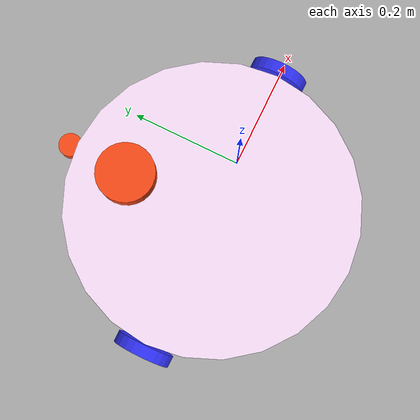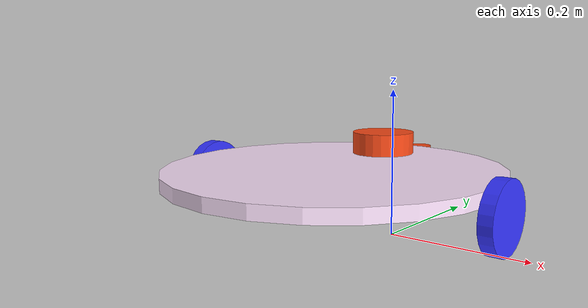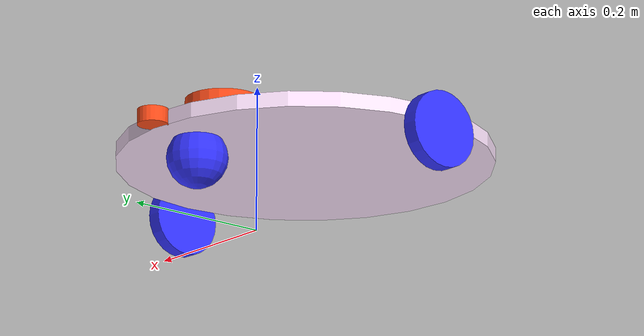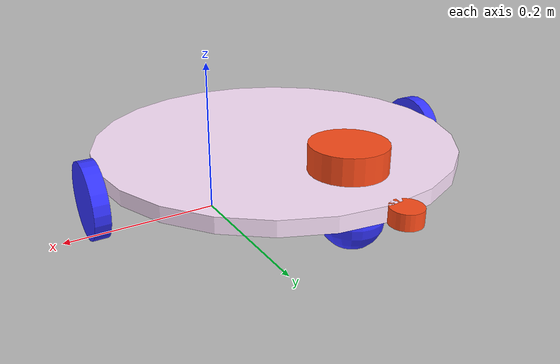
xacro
<?xml version="1.0"?>
<robot xmlns:xacro="http://www.ros.org/wiki/xacro" name="mybot">
    <xacro:include filename="mybot_material.xacro"/>
    <xacro:include filename="mybot_inertial.xacro"/>
    <xacro:include filename="gazebo_control.xacro"/>
    <xacro:include filename="lidar.xacro"/>
    <!-- base link -->

    <link name="base_link">

    </link>/>

    <!-- chasis link -->

    <link name="chassis_link">
        <visual>
            <origin xyz="0.0 0.0 0.075" rpy="0.0 0.0 0.0"/>
            <geometry>
                <cylinder radius="0.25" length="0.02"/>
            </geometry>
            <material name="white"/>
        </visual>
        <collision>
            <origin xyz="0.0 0.0 0.075" rpy="0.0 0.0 0.0"/>
            <geometry>
                <cylinder radius="0.25" length="0.02"/>
            </geometry>
        </collision>
        <xacro:inertial_cylinder mass="0.5" length = "0.05" radius = "5">
            <origin xyz = "0 0 0" rpy = "0 0 0"/>
        </xacro:inertial_cylinder>
    </link>

    <joint name="chassis_joint" type="fixed">
        <parent link="base_link"/>
        <child link="chassis_link"/>
        <origin xyz="-0.1 0.0 0.0" rpy="0.0 0.0 0.0"/>
    </joint>

    <gazebo reference = "chassis_link">
        <material>Gazebo/Black</material>
    </gazebo>

    <!-- left_wheel -->

    <link name="left_wheel">
        <visual>
            <origin xyz="0.0 0.0 0.0" rpy="0.0 1.57 0.0"/>
            <geometry>
                <cylinder radius="0.05" length="0.02"/>
            </geometry>
            <material name="blue"/>
        </visual>
        <collision>
            <origin xyz="0.0 0.0 0.0" rpy="0.0 1.57 0.0"/>
            <geometry>
                <cylinder radius="0.05" length="0.02"/>
            </geometry>
        </collision>
        <xacro:inertial_cylinder mass="0.1" length="0.02" radius="0.05">
            <origin xyz="0 0 0" rpy="0 0 0"/>
        </xacro:inertial_cylinder>
    </link>

    <joint name="leftwheel_joint" type="continuous">
        <parent link="chassis_link"/>
        <child link="left_wheel"/>
        <origin xyz="0.26 0.0 0.05" rpy="-1.573 0.0 0.0"/>
        <axis xyz="-1 0 0"/>
    </joint>

    <gazebo reference = "left_wheel">
        <material>Gazebo/Black</material>
    </gazebo>

    <!-- right_wheel -->
    <link name="right_wheel">
        <visual>
            <origin xyz="0.0 0.0 0.0" rpy="0.0 1.57 0.0"/>
            <geometry>
                <cylinder radius="0.05" length="0.02"/>
            </geometry>
            <material name="blue"/>
        </visual>
        <collision>
            <origin xyz="0.0 0.0 0.0" rpy="0.0 1.57 0.0"/>
            <geometry>
                <cylinder radius="0.05" length="0.02"/>
            </geometry>
        </collision>
        <xacro:inertial_cylinder mass="0.1" length="0.02" radius="0.05">
            <origin xyz="0 0 0" rpy="0 0 0"/>
        </xacro:inertial_cylinder>
    </link>

    <joint name="rightwheel_joint" type="continuous">
        <parent link="chassis_link"/>
        <child link="right_wheel"/>
        <origin xyz="-0.26 0.0 0.05" rpy="1.573 0.0 0.0"/>
        <axis xyz="-1 0 0"/>
    </joint>

    <gazebo reference = "right_wheel">
        <material>Gazebo/Black</material>
    </gazebo>

    <!-- caster wheel -->

    <link name="caster_wheel">
        <visual>
            <origin xyz="0.0 0.18 0.04" rpy="0.0 0.0 0.0"/>
            <geometry>
                <sphere radius="0.04"/>
            </geometry>
            <material name="blue"/>
        </visual>
        <collision>
            <origin xyz="0.0 0.18 0.04" rpy="0.0 0.0 0.0"/>
            <geometry>
                <sphere radius="0.04"/>
            </geometry>
        </collision>
        <xacro:inertial_sphere mass="0.1" radius="0.04">
            <origin xyz="0 0 0" rpy="0 0 0"/>
        </xacro:inertial_sphere>
    </link>

    <joint name="caster_wheel_joint" type="fixed">
        <parent link="chassis_link"/>
        <child link="caster_wheel"/>
        <origin xyz="0.0 0.0 0.0" rpy="0.0 0.0 0.0"/>
    </joint>

    <!-- cater wheel friction -->
    <gazebo reference="caster_wheel">
        <material>Gazebo/Black</material>
        <mu1 value="0.001"/>
        <mu2 value="0.001"/>
    </gazebo>

    <!-- transmission tags -->
    <transmission name ="trans_1">
        <type>transmission_interface/SimpleTransmission</type>
        <joint name="leftwheel_joint">
            <hardwareInterface>hardware_interface/PositionJointInterface</hardwareInterface>
        </joint>
        <actuator name="motor_1">
            <hardwareInterface>hardware_interface/PositionJointInterface</hardwareInterface>
            <mechanicalReduction>1</mechanicalReduction>
        </actuator>
    </transmission>

    <transmission name ="trans_1">
        <type>transmission_interface/SimpleTransmission</type>
        <joint name="rightwheel_joint">
            <hardwareInterface>hardware_interface/PositionJointInterface</hardwareInterface>
        </joint>
        <actuator name="motor_1">
            <hardwareInterface>hardware_interface/PositionJointInterface</hardwareInterface>
            <mechanicalReduction>1</mechanicalReduction>
        </actuator>
    </transmission>

</robot>

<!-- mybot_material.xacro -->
<robot xmlns:xacro="http://www.ros.org/wiki/xacro">
    <material name="white">
        <color rgba="1 0.9 1 1"/>
    </material>
    <material name="orange">
        <color rgba="1 0.3 0.1 1"/>
    </material>

    <material name="blue">
        <color rgba="0.2 0.2 1 1"/>
    </material>

    <material name="black">
        <color rgba="0.0 0.0 0.0 1"/>
    </material>
</robot>

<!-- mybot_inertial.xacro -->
<robot xmlns:xacro="http://www.ros.org/wiki/xacro" >

    <xacro:macro name="inertial_sphere" params="mass radius *origin">
        <inertial>
            <xacro:insert_block name="origin"/>
            <mass value="${mass}" />
            <inertia ixx="${(2/5) * mass * (radius*radius)}" ixy="0.0" ixz="0.0"
                    iyy="${(2/5) * mass * (radius*radius)}" iyz="0.0"
                    izz="${(2/5) * mass * (radius*radius)}" />
        </inertial>
    </xacro:macro>

    <xacro:macro name="inerial_chasis" params="mass radius *origin">
        <inertial>
            <xacro:insert_block name="origin"/>
            <mass value="${mass}"/>
           <inertia ixx="${(2/5) * mass * (radius*radius)}" ixy="0.0" ixz="0.0"
                iyy="${(2/5) * mass * (radius*radius)}" iyz="0.0"
                izz="${(2/5) * mass * (radius*radius)}"/>
        </inertial>
    </xacro:macro>

    <xacro:macro name="inertial_box" params="mass x y z *origin">
        <inertial>
            <xacro:insert_block name="origin"/>
            <mass value="${mass}" />
            <inertia ixx="${(1/12) * mass * (y*y+z*z)}" ixy="0.0" ixz="0.0"
                    iyy="${(1/12) * mass * (x*x+z*z)}" iyz="0.0"
                    izz="${(1/12) * mass * (x*x+y*y)}" />
        </inertial>
    </xacro:macro>

    <xacro:macro name="inertial_cylinder" params="mass length radius *origin">
        <inertial>
            <xacro:insert_block name="origin"/>
            <mass value="${mass}" />
            <inertia ixx="${(1/12) * mass * (3*radius*radius + length*length)}" ixy="0.0" ixz="0.0"
                    iyy="${(1/12) * mass * (3*radius*radius + length*length)}" iyz="0.0"
                    izz="${(1/2) * mass * (radius*radius)}" />
        </inertial>
    </xacro:macro>

</robot>

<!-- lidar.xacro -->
<robot xmlns:xacro="http://www.ros.org/wiki/xacro" >

    <!-- laser frame  -->

    <joint name="laser_joint" type="fixed">
        <parent link="chassis_link"/>
        <child link="laser_frame"/>
        <origin xyz="-0.015 0.15 0.1" rpy="0 0 0"/>
    </joint>

    <link name="laser_frame">
        <visual>
            <geometry>
                <cylinder radius="0.05" length="0.04"/>
            </geometry>
            <material name="orange"/>
        </visual>
        <collision>
            <geometry>
                <cylinder radius="0.05" length="0.04"/>
            </geometry>
        </collision>
        <xacro:inertial_cylinder mass="0.1" length="0.04" radius="0.05">
            <origin xyz="0 0 0" rpy="0 0 0"/>
        </xacro:inertial_cylinder>
    </link>

    <gazebo reference="laser_frame">
        <material>Gazebo/Red</material>

        <sensor name="laser" type="ray">
            <pose> 0 0 0 0 0 0 </pose>
            <visualize>true</visualize>
            <update_rate>10</update_rate>
            <ray>
                <scan>
                    <horizontal>
                        <samples>360</samples>
                        <min_angle>-3.14</min_angle>
                        <max_angle>3.14</max_angle>
                    </horizontal>
                </scan>
                <range>
                    <min>0.3</min>
                    <max>12</max>
                </range>
                <noise>
                    <type>gaussian</type>
                    <mean>0.0</mean>
                    <stddev>0.01</stddev>
                </noise>
            </ray>
            <plugin name="laser_controller" filename="libgazebo_ros_laser.so">
                <topicName>/sensor_msgs/Laser_scan</topicName>
                <frameName>laser_frame</frameName>
            </plugin>
        </sensor>

    </gazebo>

    <!-- camera frame -->
    <joint name="camera_joint" type="fixed">
        <parent link="chassis_link"/>
        <child link="camera_frame"/>
        <origin xyz="-0.01 0.26 0.075" rpy="0 0 0"/>
    </joint>

    <link name="camera_frame">
        <visual>
            <geometry>
                <cylinder radius="0.02" length="0.02"/>
            </geometry>
            <material name="orange"/>
        </visual>
        <collision>
            <geometry>
                <cylinder radius="0.02" length="0.02"/>
            </geometry>
        </collision>
        <xacro:inertial_cylinder mass="0.1" length="0.02" radius="0.02">
            <origin xyz="0 0 0" rpy="0 0 0"/>
        </xacro:inertial_cylinder>
    </link>

    <gazebo reference="camera_frame">
	    <sensor type="depth" name="camera1">
		<always_on>1</always_on>
		<visualize>true</visualize>
		<camera>
		    <horizontal_fov>1.047</horizontal_fov>
		    <image>
		        <width>640</width>
		        <height>480</height>
		        <format>R8G8B8</format>
		    </image>
		    <depth_camera>

		    </depth_camera>
		    <clip>
		        <near>0.1</near>
		        <far>100</far>
		    </clip>
		</camera>
		     <plugin name="camera_controller" filename="libgazebo_ros_openni_kinect.so">
		     <alwaysOn>true</alwaysOn>
		        <updateRate>10.0</updateRate>
		        <cameraName>cam</cameraName>
		        <frameName>camera_frame</frameName>
		    <imageTopicName>rgb/image_raw</imageTopicName>
		    <depthImageTopicName>depth/image_raw</depthImageTopicName>
		    <pointCloudTopicName>depth/points</pointCloudTopicName>
		    <cameraInfoTopicName>rgb/camera_info</cameraInfoTopicName>
		    <depthImageCameraInfoTopicName>depth/camera_info</depthImageCameraInfoTopicName>
		    <pointCloudCutoff>0.4</pointCloudCutoff>
		        <hackBaseline>0.07</hackBaseline>
		        <distortionK1>0.0</distortionK1>
		        <distortionK2>0.0</distortionK2>
		        <distortionK3>0.0</distortionK3>
		        <distortionT1>0.0</distortionT1>
		        <distortionT2>0.0</distortionT2>
		    <CxPrime>0.0</CxPrime>
		    <Cx>0.0</Cx>
		    <Cy>0.0</Cy>
		    <focalLength>0.0</focalLength>
		    </plugin>
	    </sensor>
	</gazebo>

</robot>
